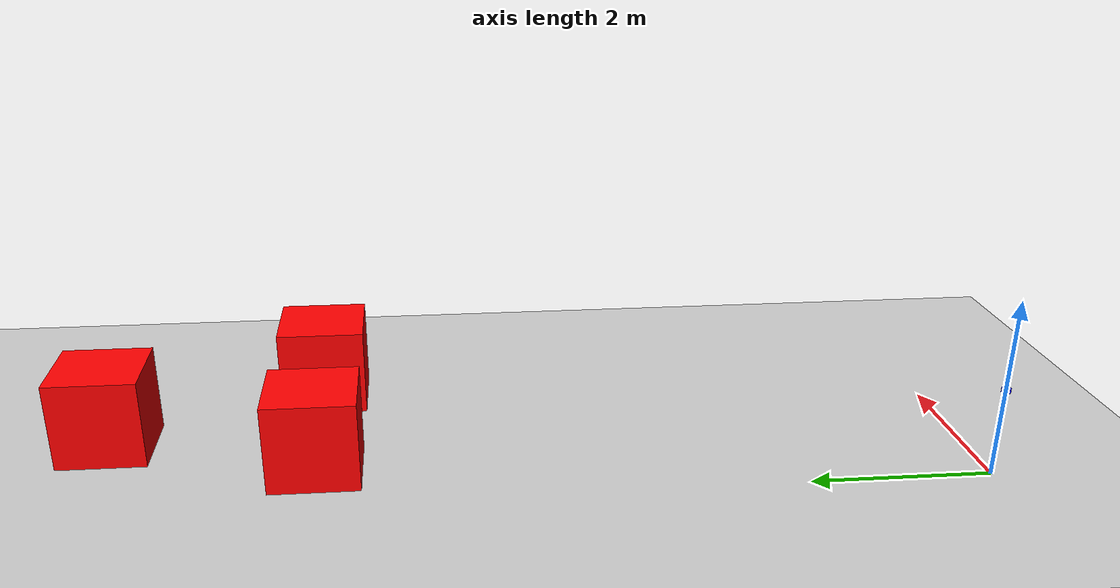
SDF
<?xml version="1.0"?>
<sdf version="1.10">
  <world name="empty">

    <!-- ================= PHYSICS ================= -->
    <physics name="1ms" type="ignored">
      <max_step_size>0.001</max_step_size>
      <real_time_factor>1</real_time_factor>
      <real_time_update_rate>1000</real_time_update_rate>
    </physics>

    <!-- ================= SYSTEM PLUGINS ================= -->
    <plugin name="gz::sim::systems::Physics"
            filename="gz-sim-physics-system"/>
    <plugin name="gz::sim::systems::UserCommands"
            filename="gz-sim-user-commands-system"/>
    <plugin name="gz::sim::systems::SceneBroadcaster"
            filename="gz-sim-scene-broadcaster-system"/>
    <plugin name="gz::sim::systems::Sensors"
            filename="gz-sim-sensors-system">
      <render_engine>ogre2</render_engine>
    </plugin>

    <!-- ================= ENV ================= -->
    <gravity>0 0 -9.81</gravity>
    <atmosphere type="adiabatic"/>
    <scene>
      <ambient>0.4 0.4 0.4 1</ambient>
      <background>0.7 0.7 0.7 1</background>
      <shadows>true</shadows>
    </scene>

    <!-- ================= GROUND ================= -->
    <model name="ground_plane">
      <static>true</static>
      <link name="link">
        <collision name="collision">
          <geometry>
            <plane>
              <normal>0 0 1</normal>
              <size>100 100</size>
            </plane>
          </geometry>
        </collision>
        <visual name="visual">
          <geometry>
            <plane>
              <normal>0 0 1</normal>
              <size>100 100</size>
            </plane>
          </geometry>
          <material>
            <ambient>0.8 0.8 0.8 1</ambient>
            <diffuse>0.8 0.8 0.8 1</diffuse>
          </material>
        </visual>
      </link>
    </model>

    <!-- ================= LIDAR MODEL ================= -->
    <model name="lidar_model">
      <static>false</static>
      <pose>0 0 1 0 0 0</pose>

      <link name="lidar_link">

        <!-- LiDAR visual -->
        <visual name="lidar_visual">
          <geometry>
            <cylinder>
              <radius>0.05</radius>
              <length>0.05</length>
            </cylinder>
          </geometry>
          <material>
            <ambient>0 0 1 1</ambient>
            <diffuse>0 0 1 1</diffuse>
          </material>
        </visual>

        <!-- ================= GPU LIDAR SENSOR ================= -->
        <sensor name="lidar" type="gpu_lidar">
          <pose>0 0 0 0 0 0</pose>
          <update_rate>10</update_rate>
          <topic>/lidar</topic>

          <lidar>
            <scan>
              <horizontal>
                <samples>360</samples>
                <resolution>1</resolution>
                <min_angle>-3.14159</min_angle>
                <max_angle>3.14159</max_angle>
              </horizontal>
            </scan>
            <range>
              <min>0.1</min>
              <max>20.0</max>
              <resolution>0.01</resolution>
            </range>
          </lidar>

          <always_on>true</always_on>
          <visualize>true</visualize>
        </sensor>

      </link>
    </model>

    <!-- ================= OBSTACLES ================= -->
    <model name="box">
      <pose>0.74918 7.31337 0.5 0 0 0</pose>
      <link name="box_link">
        <collision name="collision">
          <geometry><box><size>1 1 1</size></box></geometry>
        </collision>
        <visual name="visual">
          <geometry><box><size>1 1 1</size></box></geometry>
          <material>
            <ambient>1 0 0 1</ambient>
            <diffuse>1 0 0 1</diffuse>
          </material>
        </visual>
      </link>
    </model>

    <model name="box_0">
      <pose>2.66794 7.30272 0.5 0 0 0</pose>
      <link name="box_link">
        <collision name="collision">
          <geometry><box><size>1 1 1</size></box></geometry>
        </collision>
        <visual name="visual">
          <geometry><box><size>1 1 1</size></box></geometry>
          <material>
            <ambient>1 0 0 1</ambient>
            <diffuse>1 0 0 1</diffuse>
          </material>
        </visual>
      </link>
    </model>

    <model name="box_1">
      <pose>1.49532 9.67564 0.5 0 0 0</pose>
      <link name="box_link">
        <collision name="collision">
          <geometry><box><size>1 1 1</size></box></geometry>
        </collision>
        <visual name="visual">
          <geometry><box><size>1 1 1</size></box></geometry>
          <material>
            <ambient>1 0 0 1</ambient>
            <diffuse>1 0 0 1</diffuse>
          </material>
        </visual>
      </link>
    </model>

    <!-- ================= SUN ================= -->
    <light name="sun" type="directional">
      <pose>0 0 10 0 0 0</pose>
      <direction>-0.5 0.1 -0.9</direction>
      <diffuse>0.8 0.8 0.8 1</diffuse>
    </light>

  </world>
</sdf>
